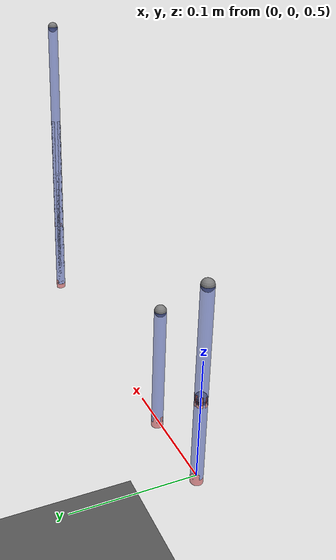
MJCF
<?xml version='1.0' encoding='UTF-8'?>
<mujoco>

    <option timestep="1e-3"/>
    <option gravity="0 0 -9.8"/>

    <asset>
        <texture type="skybox" builtin="gradient" rgb1="1 1 1" rgb2="0.5 0.5 0.5" width="265" height="256"/>
        <texture name="grid" type="2d" builtin="checker" rgb1="0.1 0.1 0.1" rgb2="0.6 0.6 0.6" width="300" height="300"/>
        <material name="grid" texture="grid" texrepeat="10 10" reflectance="0.2"/>
    </asset>

    <worldbody>

    <camera name="side view" pos="0.1 -0.4 0.5" euler="90 0 0" fovy="60"/>

    <light pos="0 0 10"/>
    <geom type="plane" size="0.5 0.5 0.1" material="grid"/>

    <body name="OAB1" pos="0 0 0.5" euler="0 0 0">

            <joint name="O" type="hinge" axis="0 -1 0" stiffness="0" springref="0" damping="0.1"/>
            <geom name="point O" type="cylinder" pos="0 0 0" size="0.005 0.005" rgba="0.89 0.14 0.16 0.5" euler="0 0 0" contype="0"/>
            <geom name="link OA" type="cylinder" pos="0 0 0.0345" size="0.005 0.0345" rgba="0.21 0.32 0.82 0.5" euler="0 0 0" contype="0"/>
            <site name="sA" size="0.005" pos="0 0 0.069"/>

            <body name="AB1" pos="0 0 0.069" euler="0 0 0">

                <joint name="A" type="hinge" axis="0 -1 0" stiffness="0" springref="0" damping="0.1"/>
                <geom name="point B" type="cylinder" pos="0 0 0" size="0.005 0.005" rgba="0.89 0.14 0.16 0.5" euler="0 0 0" contype="0"/>
                <geom name="link AB1" type="cylinder" pos="0 0 0.04485" size="0.005 0.04485" rgba="0.21 0.32 0.82 0.5" euler="0 0 0" contype="0"/>
                <site name="sC1" size="0.005" pos="0 0 0.0897"/>

            </body>

    </body>

    <body name="CB2" pos="0.069 0 0.5" euler="0 0 0">

        <joint name="C" type="hinge" axis="0 -1 0" stiffness="0" springref="0" damping="0.1"/>
        <geom name="point C" type="cylinder" pos="0 0 0" size="0.005 0.005" rgba="0.89 0.14 0.16 0.5" euler="0 0 0" contype="0"/>
        <geom name="link CB2" type="cylinder" pos="0 0 0.05175" size="0.005 0.05175" rgba="0.21 0.32 0.82 0.5" euler="0 0 0" contype="0"/>
        <site name="sC2" size="0.005" pos="0 0 0.1035"/>

    </body>

    <body name="DFB3" pos="0.345 0 0.5" euler="0 0 0">

        <joint name="D" type="hinge" axis="0 -1 0" stiffness="0" springref="0" damping="0.1"/>
        <geom name="point D" type="cylinder" pos="0 0 0" size="0.005 0.005" rgba="0.89 0.14 0.16 0.5" euler="0 0 0" contype="0"/>
        <geom name="link DB3" type="cylinder" pos="0 0 0.1" size="0.005 0.1" rgba="0.21 0.32 0.82 0.5" euler="0 0 0" contype="0"/>

        <body name="FB3" pos="0 0 0.075" euler="0 0 0">

            <joint name="slider" type="slide" axis="0 0 1" limited="true" range="-0.2 0.2" stiffness="0" springref="0" damping="0.1"/>
            <geom name="point B3" type="cylinder" pos="0 0 0" size="0.005 0.005" rgba="0.89 0.14 0.16 0.5" euler="0 0 0" contype="0"/>
            <geom name="link FB3" type="cylinder" pos="0 0 0.075" size="0.005 0.15" rgba="0.21 0.32 0.82 0.5" euler="0 0 0" contype="0"/>
            <site name="sC3" size="0.005" pos="0 0 0.225"/>

        </body>

    </body>

    </worldbody>

    <equality>
        <connect site1="sC1" site2="sC2"/>
        <connect site1="sC1" site2="sC3"/>
    </equality>

    <actuator>
        <position name="slider" joint="slider"/>
    </actuator>

    <sensor>
        <framepos objtype="site" objname="sA"/>
    </sensor>

</mujoco>
